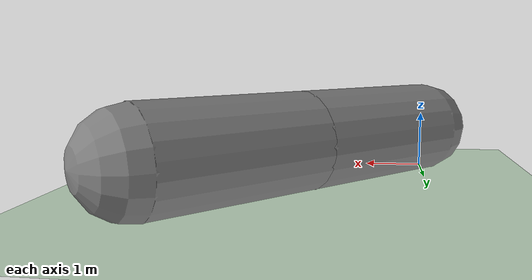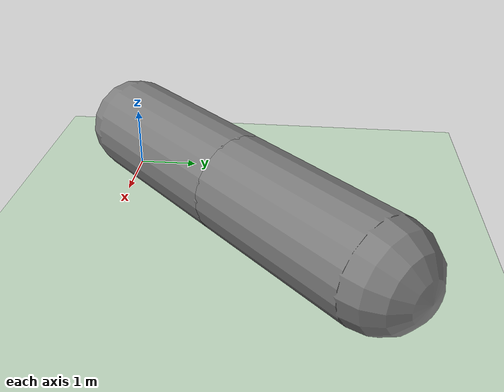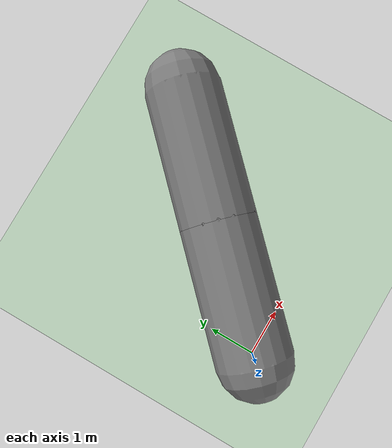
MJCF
<mujoco>
  <option gravity="0 0 -9.81" timestep="0.01"/>
  <asset>
	<texture type="skybox" builtin="gradient" rgb1="1 1 1" rgb2=".6 .8 1" width="256" height="256"/>
	<material name="MatPlane" reflectance="0.5" shininess="1" specular="1" texrepeat="60 60"/>

	<mesh name = "LinkageCAM" file = "stl_prototype3/LinkageCAM.stl"/>
	<mesh name = "LinkageCAM_m" file = "stl_prototype3/LinkBoiCAM_m.stl"/>
	<mesh name = "EndEffector" file = "stl_prototype3/EndLeg.stl"/>
	<mesh name = "MiddleLinkage" file = "stl_prototype3/MiddleLink.stl"/>
	<mesh name = "LinkageGuide" file = "stl_prototype3/NormalGuide.stl"/>
	<mesh name = "ServoLinkage" file = "stl_prototype3/ServoGuide.stl"/>
	<mesh name = "ServoMount" file = "stl_prototype3/ServoMount.stl"/>
	<mesh name = "ChasisBase" file = "stl_prototype3/ChasisBase.stl"/>
  </asset>
	<worldbody>
	<geom conaffinity="1" condim="3" material="MatPlane" name="floor" pos="0 0 0" rgba="0.8 0.9 0.8 1" size="40 40 40" type="plane"/>
	<body name="torso" pos="0 0 0.75">
      <camera name="track" mode="trackcom" pos="0 -3 0.3" xyaxes="1 0 0 0 0 1"/>
      <geom name="torso_geom" pos="0 0 0" size="0.25" type="sphere"/>
      <joint armature="0" damping="0" limited="false" margin="0.01" name="root" pos="0 0 0" type="free"/>
      <body name="front_left_leg" pos="0 0 0">
        <geom fromto="0.0 0.0 0.0 2 2 0.0" name="aux_1_geom" size="0.8" type="capsule"/>
        <body name="aux_1" pos="2 2 0">
          <joint axis="0 0 1" name="hip_1" pos="0.0 0.0 0.0" range="-30 30" type="hinge"/>
          <geom fromto="0.0 0.0 0.0 2 2 0.0" name="left_leg_geom" size="0.8" type="capsule"/>
        </body>
      </body>
	</body>
	</worldbody>
	<actuator>
	  <position ctrllimited="true" ctrlrange="-1.0 1.0" joint="hip_1" kp = "3"/>
	</actuator>
</mujoco>
